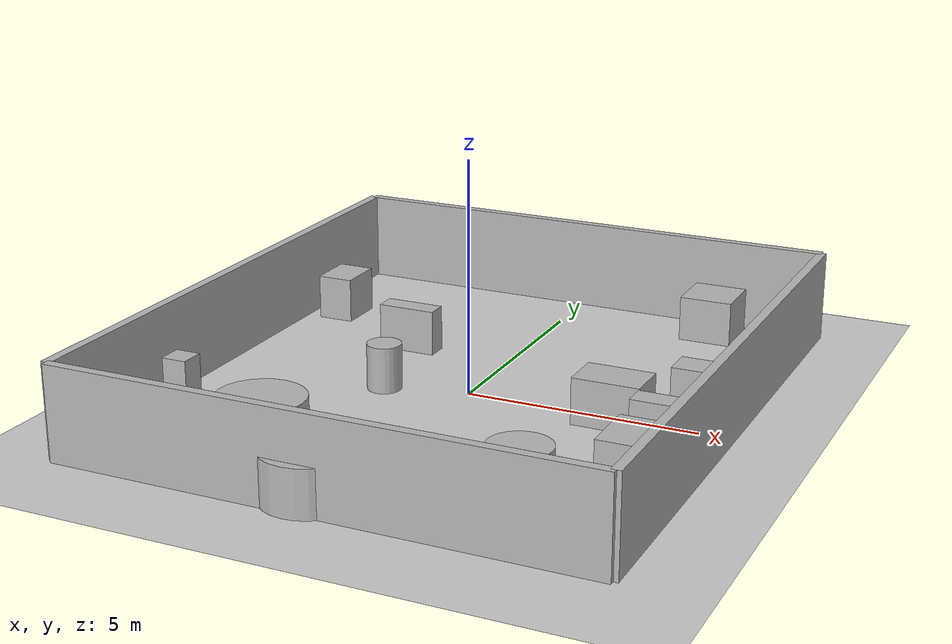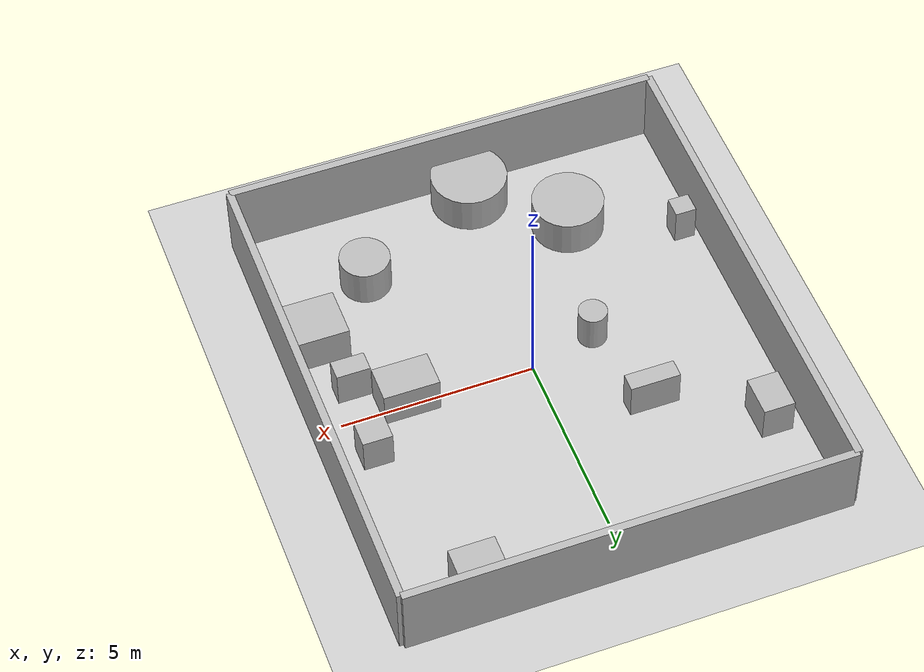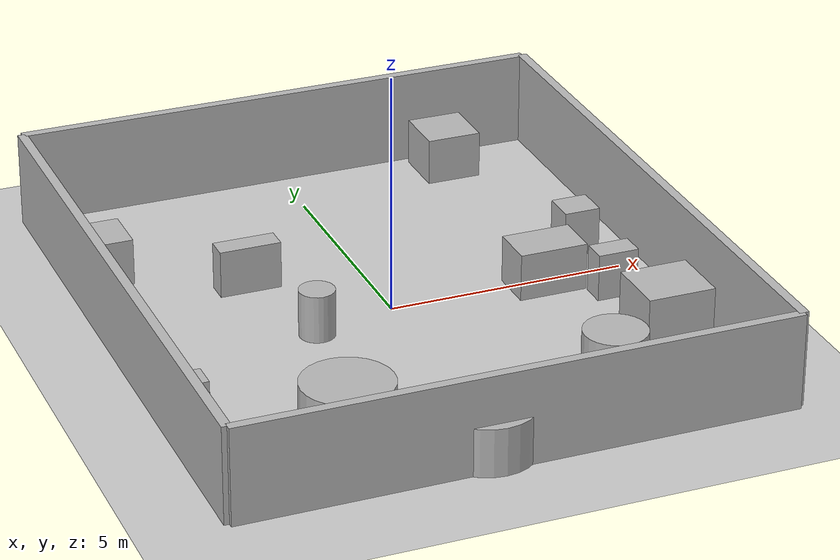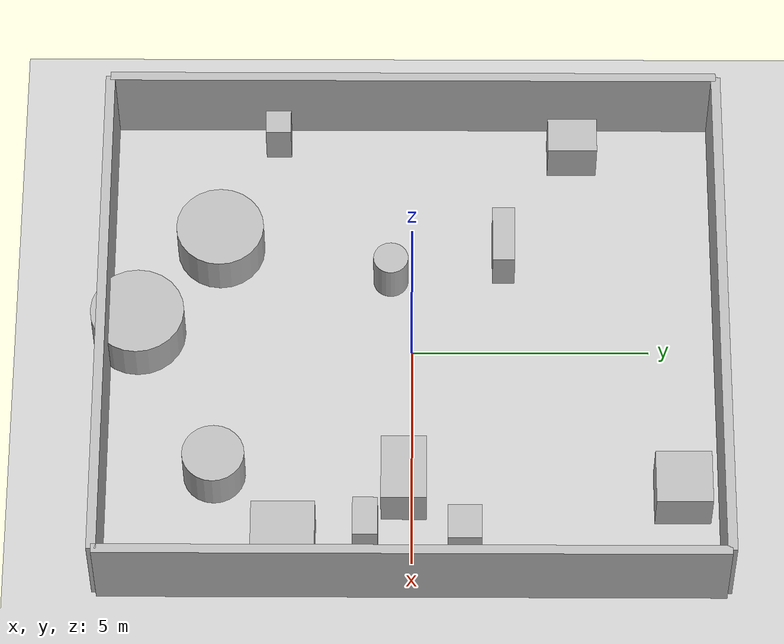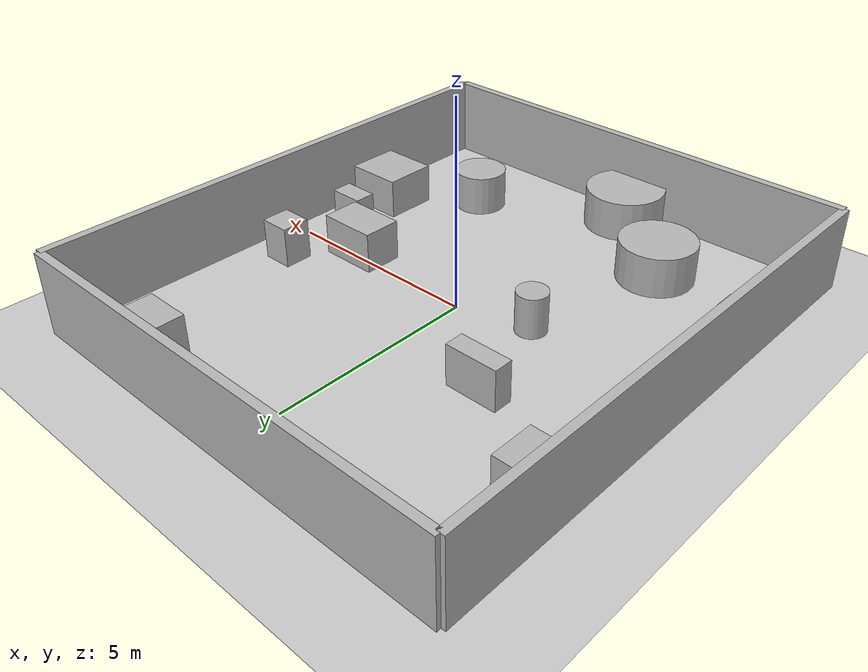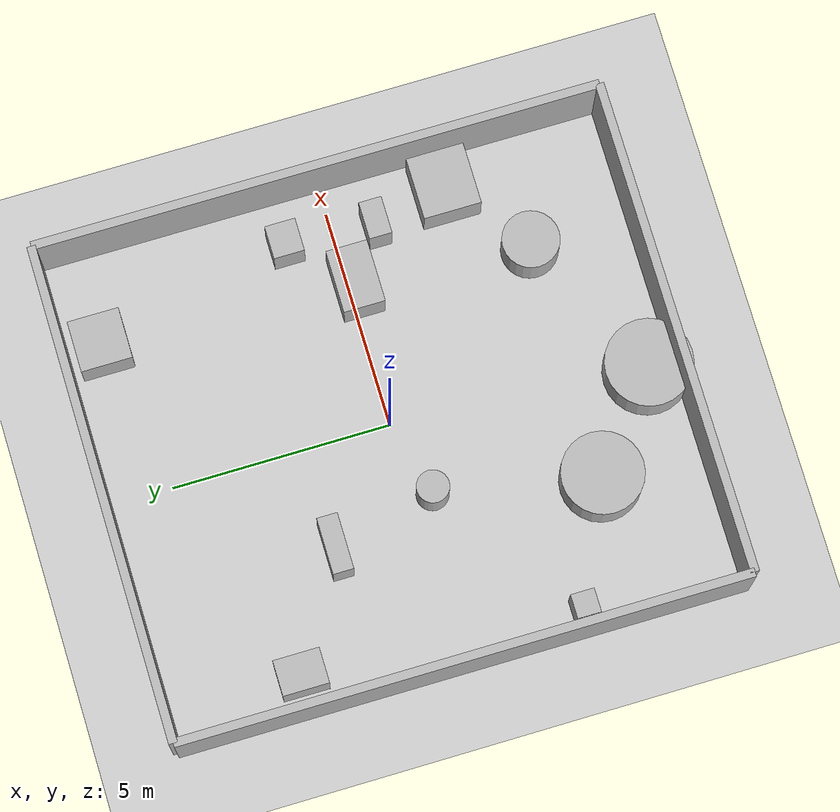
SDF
<?xml version="1.0"?>
<sdf version="1.6">
  <world name="env_19">

    <include><uri>model://ground_plane</uri></include>
    <include><uri>model://sun</uri></include>

    <!-- WALLS -->
    <model name="wall_north"><static>true</static><pose>0 6.483648425316725 1 0 0 0</pose>
      <link name="link"><collision name="collision">
        <geometry><box><size>11.331304001138799 0.2 2</size></box></geometry>
      </collision><visual name="visual">
        <geometry><box><size>11.331304001138799 0.2 2</size></box></geometry>
      </visual></link>
    </model>

    <model name="wall_south"><static>true</static><pose>0 -6.483648425316725 1 0 0 0</pose>
      <link name="link"><collision name="collision">
        <geometry><box><size>11.331304001138799 0.2 2</size></box></geometry>
      </collision><visual name="visual">
        <geometry><box><size>11.331304001138799 0.2 2</size></box></geometry>
      </visual></link>
    </model>

    <model name="wall_east"><static>true</static><pose>5.665652000569399 0 1 0 0 1.57</pose>
      <link name="link"><collision name="collision">
        <geometry><box><size>12.96729685063345 0.2 2</size></box></geometry>
      </collision><visual name="visual">
        <geometry><box><size>12.96729685063345 0.2 2</size></box></geometry>
      </visual></link>
    </model>

    <model name="wall_west"><static>true</static><pose>-5.665652000569399 0 1 0 0 1.57</pose>
      <link name="link"><collision name="collision">
        <geometry><box><size>12.96729685063345 0.2 2</size></box></geometry>
      </collision><visual name="visual">
        <geometry><box><size>12.96729685063345 0.2 2</size></box></geometry>
      </visual></link>
    </model>

    <!-- SENSOR -->

    <model name="lidar_sensor">
      <static>true</static>
      <pose>4.29079888444934 -2.037539140126645 0.4 0 0 0</pose>
      <link name="link">
        <sensor name="lidar" type="ray">
          <pose>0 0 0 0 0 0</pose>
          <visualize>true</visualize>
          <always_on>true</always_on>
          <update_rate>10</update_rate>
          <ray>
            <scan><horizontal>
              <samples>240</samples>
              <resolution>1</resolution>
              <min_angle>-3.14159</min_angle>
              <max_angle>3.14159</max_angle>
            </horizontal></scan>
            <range><min>0.15</min><max>20.0</max><resolution>0.01</resolution></range>
          </ray>
          <plugin name="lidar_plugin" filename="liblidar_plugin.so"/>
        </sensor>
      </link>
    </model>

    <!-- OBSTACLES -->

    <model name="obstacle_0">
      <static>true</static>
      <pose>3.467507626684726 5.621376686618204 0.5 0 0 0</pose>
      <link name="link">
        <collision name="collision">
          <geometry><box><size>1.17 1.17 1.0</size></box></geometry>
        </collision>
        <visual name="visual">
          <geometry><box><size>1.17 1.17 1.0</size></box></geometry>
        </visual>
      </link>
    </model>

    <model name="obstacle_1">
      <static>true</static>
      <pose>-2.3517009749187565 1.9387026056490182 0.5 0 0 0</pose>
      <link name="link">
        <collision name="collision">
          <geometry><box><size>1.29 0.47 1.0</size></box></geometry>
        </collision>
        <visual name="visual">
          <geometry><box><size>1.29 0.47 1.0</size></box></geometry>
        </visual>
      </link>
    </model>

    <model name="obstacle_2">
      <static>true</static>
      <pose>-0.4433773395785501 -5.798479921826807 0.5 0 0 0</pose>
      <link name="link">
        <collision name="collision">
          <geometry><cylinder><radius>0.99</radius><length>1.0</length></cylinder></geometry>
        </collision>
        <visual name="visual">
          <geometry><cylinder><radius>0.99</radius><length>1.0</length></cylinder></geometry>
        </visual>
      </link>
    </model>

    <model name="obstacle_3">
      <static>true</static>
      <pose>-4.834269739211459 3.4343301013812155 0.5 0 0 0</pose>
      <link name="link">
        <collision name="collision">
          <geometry><box><size>0.81 1.05 1.0</size></box></geometry>
        </collision>
        <visual name="visual">
          <geometry><box><size>0.81 1.05 1.0</size></box></geometry>
        </visual>
      </link>
    </model>

    <model name="obstacle_4">
      <static>true</static>
      <pose>4.511923414524635 1.092744630479614 0.5 0 0 0</pose>
      <link name="link">
        <collision name="collision">
          <geometry><box><size>0.76 0.7 1.0</size></box></geometry>
        </collision>
        <visual name="visual">
          <geometry><box><size>0.76 0.7 1.0</size></box></geometry>
        </visual>
      </link>
    </model>

    <model name="obstacle_5">
      <static>true</static>
      <pose>4.773153981338342 -2.6550767700376143 0.5 0 0 0</pose>
      <link name="link">
        <collision name="collision">
          <geometry><box><size>1.42 1.32 1.0</size></box></geometry>
        </collision>
        <visual name="visual">
          <geometry><box><size>1.42 1.32 1.0</size></box></geometry>
        </visual>
      </link>
    </model>

    <model name="obstacle_6">
      <static>true</static>
      <pose>2.9493793245785644 -4.120845584074247 0.5 0 0 0</pose>
      <link name="link">
        <collision name="collision">
          <geometry><cylinder><radius>0.65</radius><length>1.0</length></cylinder></geometry>
        </collision>
        <visual name="visual">
          <geometry><cylinder><radius>0.65</radius><length>1.0</length></cylinder></geometry>
        </visual>
      </link>
    </model>

    <model name="obstacle_7">
      <static>true</static>
      <pose>-5.1557345056534825 -2.899808725187813 0.5 0 0 0</pose>
      <link name="link">
        <collision name="collision">
          <geometry><box><size>0.55 0.54 1.0</size></box></geometry>
        </collision>
        <visual name="visual">
          <geometry><box><size>0.55 0.54 1.0</size></box></geometry>
        </visual>
      </link>
    </model>

    <model name="obstacle_8">
      <static>true</static>
      <pose>-1.7486674954831218 -0.45965748751756763 0.5 0 0 0</pose>
      <link name="link">
        <collision name="collision">
          <geometry><cylinder><radius>0.37</radius><length>1.0</length></cylinder></geometry>
        </collision>
        <visual name="visual">
          <geometry><cylinder><radius>0.37</radius><length>1.0</length></cylinder></geometry>
        </visual>
      </link>
    </model>

    <model name="obstacle_9">
      <static>true</static>
      <pose>-2.5095355946346256 -4.098785099956819 0.5 0 0 0</pose>
      <link name="link">
        <collision name="collision">
          <geometry><cylinder><radius>0.93</radius><length>1.0</length></cylinder></geometry>
        </collision>
        <visual name="visual">
          <geometry><cylinder><radius>0.93</radius><length>1.0</length></cylinder></geometry>
        </visual>
      </link>
    </model>

    <model name="obstacle_10">
      <static>true</static>
      <pose>4.396302631209347 -0.9651002696002662 0.5 0 0 0</pose>
      <link name="link">
        <collision name="collision">
          <geometry><box><size>0.86 0.52 1.0</size></box></geometry>
        </collision>
        <visual name="visual">
          <geometry><box><size>0.86 0.52 1.0</size></box></geometry>
        </visual>
      </link>
    </model>

    <model name="obstacle_11">
      <static>true</static>
      <pose>3.249602451689289 -0.16985269356291166 0.5 0 0 0</pose>
      <link name="link">
        <collision name="collision">
          <geometry><box><size>1.44 0.95 1.0</size></box></geometry>
        </collision>
        <visual name="visual">
          <geometry><box><size>1.44 0.95 1.0</size></box></geometry>
        </visual>
      </link>
    </model>

  </world>
</sdf>
